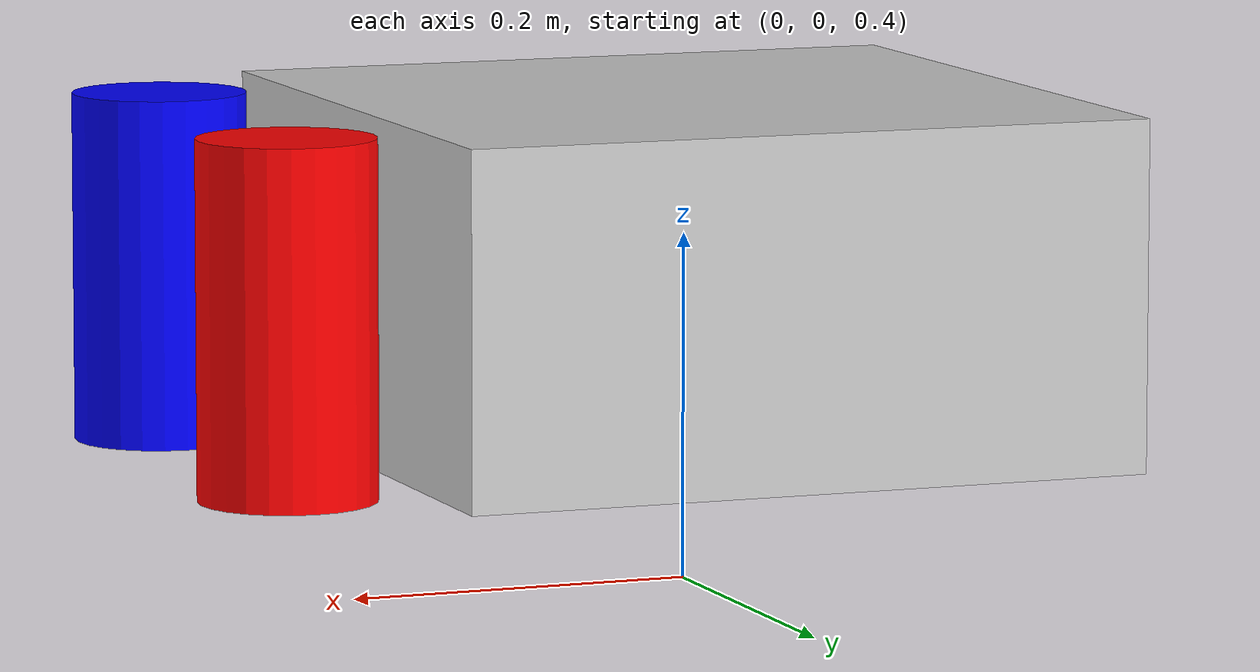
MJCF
<mujoco model="simple_robot">
    <compiler angle="radian" />
    <option timestep="0.002" />

    <asset>
        <texture name="checker" type="2d" builtin="checker" width="512" height="512" />
        <material name="gray" texture="checker" rgba="0.7 0.7 0.7 1" />
    </asset>

    <worldbody>
        <geom name="ground" type="plane" size="10 10 0.1" rgba="0.2 0.6 0.2 1"/>
        <light name="main_light" pos="0 0 2" dir="0 0 -1" diffuse="1 1 1"/>

        <!-- 机器人基座 -->
        <body name="base" pos="0 0 0.58">
            <freejoint />
            <geom type="box" size="0.2 0.2 0.1" rgba="0.8 0.8 0.8 1"/>

            <body name="LF_HIP" pos="0.277 0.116 0">
                <!-- 让 LF_HIP 通过 hinge 关节连接到 base -->
                <joint name="LF_HAA" type="hinge" axis="1 0 0" pos="0.277 0.116 0" range="-0.5 0.5"/>
                <geom type="cylinder" size="0.05 0.1" rgba="1 0 0 1"/>
            </body>

            <body name="RF_HIP" pos="0.277 -0.116 0">
                <!-- 让 RF_HIP 通过 hinge 关节连接到 base -->
                <joint name="RF_HAA" type="hinge" axis="1 0 0" pos="0.277 -0.116 0" range="-0.5 0.5"/>
                <geom type="cylinder" size="0.05 0.1" rgba="0 0 1 1"/>
            </body>

        </body>
    </worldbody>

    <actuator>
        <motor name="LF_HAA_motor" joint="LF_HAA" ctrlrange="-1 1" gear="10"/>
        <motor name="RF_HAA_motor" joint="RF_HAA" ctrlrange="-1 1" gear="10"/>
    </actuator>
</mujoco>
